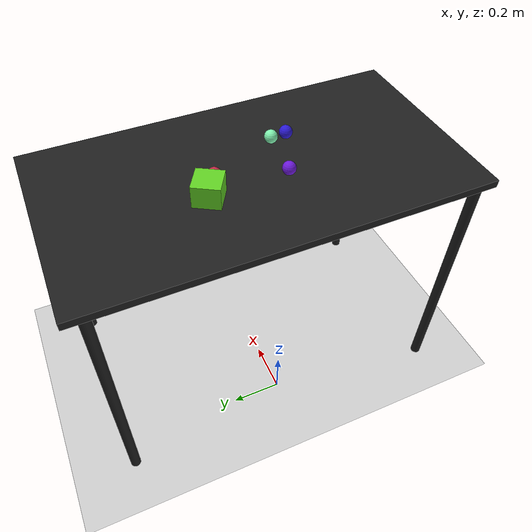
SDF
<?xml version="1.0" ?>
<sdf version="1.6">
  <world name="arm_world">
    <plugin filename="gz-sim-physics-system" name="gz::sim::systems::Physics">
      <engine>
        <filename>libgz-physics-bullet-featherstone-plugin.so</filename>
      </engine>
    </plugin>
    <plugin filename="gz-sim-user-commands-system" name="gz::sim::systems::UserCommands"/>
    <plugin filename="gz-sim-scene-broadcaster-system" name="gz::sim::systems::SceneBroadcaster"/>
    <plugin filename="gz-sim-sensors-system" name="gz::sim::systems::Sensors">
      <render_engine>ogre2</render_engine>
    </plugin>
    <gravity>0.0 0.0 -9.8</gravity>
    <scene>
      <shadows>false</shadows>
    </scene>
    <gui>
      <camera name="user_camera">
        <pose>0.75 -0.75 1.4 0 0.29 2.21</pose>
      </camera>
    </gui>
    <include>
      <uri>https://fuel.gazebosim.org/1.0/OpenRobotics/models/Sun</uri>
    </include>
    <model name="table">
      <static>true</static>
      <include>
        <uri>model://table</uri>
      </include>
      <pose>0.29 0 0 0 0 1.5708</pose>
    </model>
    <model name="ground_plane">
      <static>true</static>
      <link name="link">
        <collision name="collision">
          <geometry>
            <plane>
              <normal>0 0 1</normal>
            </plane>
          </geometry>
          <surface>
            <friction>
              <ode>
                <mu>1.0</mu>
                <mu2>1.0</mu2>
              </ode>
            </friction>
          </surface>
        </collision>
        <visual name="visual">
          <geometry>
            <plane>
              <normal>0 0 1</normal>
              <size>100 100</size>
            </plane>
          </geometry>
          <material>
            <ambient>0.8 0.8 0.8 1</ambient>
            <diffuse>0.8 0.8 0.8 1</diffuse>
            <specular>0.8 0.8 0.8 1</specular>
          </material>
        </visual>
      </link>
    </model>
    <model name="sphere_m_0">
      <pose>0.271 0.142 1.05 0 0 3.26</pose>
      <link name="sphere_m_0_link">
        <inertial>
          <mass>0.05</mass>
          <inertia>
            <ixx>2.04e-7</ixx>
            <iyy>2.04e-7</iyy>
            <izz>3.9e-8</izz>
            <ixy>0</ixy>
            <ixz>0</ixz>
            <iyz>0</iyz>
          </inertia>
        </inertial>
        <collision name="sphere_m_0_collision">
          <geometry>
            <sphere>
              <radius>0.025</radius>
            </sphere>
          </geometry>
          <surface>
            <friction>
              <ode>
                <mu>0.8</mu>
                <mu2>0.8</mu2>
                <fdir1>0 0 1</fdir1>
                <slip1>0.001</slip1>
                <slip2>0.001</slip2>
              </ode>
              <torsional>
                <coefficient>0.1</coefficient>
                <surface_radius>0.015</surface_radius>
                <use_patch_radius>true</use_patch_radius>
              </torsional>
            </friction>
            <contact>
              <ode>
                <kp>1e5</kp>
                <kd>10</kd>
                <max_vel>0.1</max_vel>
                <min_depth>0.001</min_depth>
                <soft_cfm>0.01</soft_cfm>
                <soft_erp>0.2</soft_erp>
              </ode>
            </contact>
            <bounce>
              <restitution_coefficient>0.2</restitution_coefficient>
              <threshold>0.01</threshold>
            </bounce>
          </surface>
        </collision>
        <visual name="sphere_m_0_visual">
          <geometry>
            <sphere>
              <radius>0.025</radius>
            </sphere>
          </geometry>
          <material>
            <ambient>0.76 0.16 0.28 1</ambient>
            <diffuse>0.76 0.16 0.28 1</diffuse>
          </material>
        </visual>
        <velocity_decay>
          <linear>1</linear>
          <angular>1</angular>
        </velocity_decay>
      </link>
    </model>
    <model name="cube_l_1">
      <pose>0.2 0.19 1.05 0 0 2.6</pose>
      <link name="cube_l_1_link">
        <inertial>
          <mass>0.05</mass>
          <inertia>
            <ixx>2.04e-7</ixx>
            <iyy>2.04e-7</iyy>
            <izz>3.9e-8</izz>
            <ixy>0</ixy>
            <ixz>0</ixz>
            <iyz>0</iyz>
          </inertia>
        </inertial>
        <collision name="cube_l_1_collision">
          <geometry>
            <box>
              <size>0.1 0.1 0.1</size>
            </box>
          </geometry>
          <surface>
            <friction>
              <ode>
                <mu>0.8</mu>
                <mu2>0.8</mu2>
                <fdir1>0 0 1</fdir1>
                <slip1>0.001</slip1>
                <slip2>0.001</slip2>
              </ode>
              <torsional>
                <coefficient>0.1</coefficient>
                <surface_radius>0.015</surface_radius>
                <use_patch_radius>true</use_patch_radius>
              </torsional>
            </friction>
            <contact>
              <ode>
                <kp>1e5</kp>
                <kd>10</kd>
                <max_vel>0.1</max_vel>
                <min_depth>0.001</min_depth>
                <soft_cfm>0.01</soft_cfm>
                <soft_erp>0.2</soft_erp>
              </ode>
            </contact>
            <bounce>
              <restitution_coefficient>0.2</restitution_coefficient>
              <threshold>0.01</threshold>
            </bounce>
          </surface>
        </collision>
        <visual name="cube_l_1_visual">
          <geometry>
            <box>
              <size>0.1 0.1 0.1</size>
            </box>
          </geometry>
          <material>
            <ambient>0.38 0.82 0.14 1</ambient>
            <diffuse>0.38 0.82 0.14 1</diffuse>
          </material>
        </visual>
        <velocity_decay>
          <linear>1</linear>
          <angular>1</angular>
        </velocity_decay>
      </link>
    </model>
    <model name="sphere_m_2">
      <pose>0.2 -0.103 1.05 0 0 2.03</pose>
      <link name="sphere_m_2_link">
        <inertial>
          <mass>0.05</mass>
          <inertia>
            <ixx>2.04e-7</ixx>
            <iyy>2.04e-7</iyy>
            <izz>3.9e-8</izz>
            <ixy>0</ixy>
            <ixz>0</ixz>
            <iyz>0</iyz>
          </inertia>
        </inertial>
        <collision name="sphere_m_2_collision">
          <geometry>
            <sphere>
              <radius>0.025</radius>
            </sphere>
          </geometry>
          <surface>
            <friction>
              <ode>
                <mu>0.8</mu>
                <mu2>0.8</mu2>
                <fdir1>0 0 1</fdir1>
                <slip1>0.001</slip1>
                <slip2>0.001</slip2>
              </ode>
              <torsional>
                <coefficient>0.1</coefficient>
                <surface_radius>0.015</surface_radius>
                <use_patch_radius>true</use_patch_radius>
              </torsional>
            </friction>
            <contact>
              <ode>
                <kp>1e5</kp>
                <kd>10</kd>
                <max_vel>0.1</max_vel>
                <min_depth>0.001</min_depth>
                <soft_cfm>0.01</soft_cfm>
                <soft_erp>0.2</soft_erp>
              </ode>
            </contact>
            <bounce>
              <restitution_coefficient>0.2</restitution_coefficient>
              <threshold>0.01</threshold>
            </bounce>
          </surface>
        </collision>
        <visual name="sphere_m_2_visual">
          <geometry>
            <sphere>
              <radius>0.025</radius>
            </sphere>
          </geometry>
          <material>
            <ambient>0.43 0.1 0.86 1</ambient>
            <diffuse>0.43 0.1 0.86 1</diffuse>
          </material>
        </visual>
        <velocity_decay>
          <linear>1</linear>
          <angular>1</angular>
        </velocity_decay>
      </link>
    </model>
    <model name="sphere_m_3">
      <pose>0.392 -0.183 1.05 0 0 2.86</pose>
      <link name="sphere_m_3_link">
        <inertial>
          <mass>0.05</mass>
          <inertia>
            <ixx>2.04e-7</ixx>
            <iyy>2.04e-7</iyy>
            <izz>3.9e-8</izz>
            <ixy>0</ixy>
            <ixz>0</ixz>
            <iyz>0</iyz>
          </inertia>
        </inertial>
        <collision name="sphere_m_3_collision">
          <geometry>
            <sphere>
              <radius>0.025</radius>
            </sphere>
          </geometry>
          <surface>
            <friction>
              <ode>
                <mu>0.8</mu>
                <mu2>0.8</mu2>
                <fdir1>0 0 1</fdir1>
                <slip1>0.001</slip1>
                <slip2>0.001</slip2>
              </ode>
              <torsional>
                <coefficient>0.1</coefficient>
                <surface_radius>0.015</surface_radius>
                <use_patch_radius>true</use_patch_radius>
              </torsional>
            </friction>
            <contact>
              <ode>
                <kp>1e5</kp>
                <kd>10</kd>
                <max_vel>0.1</max_vel>
                <min_depth>0.001</min_depth>
                <soft_cfm>0.01</soft_cfm>
                <soft_erp>0.2</soft_erp>
              </ode>
            </contact>
            <bounce>
              <restitution_coefficient>0.2</restitution_coefficient>
              <threshold>0.01</threshold>
            </bounce>
          </surface>
        </collision>
        <visual name="sphere_m_3_visual">
          <geometry>
            <sphere>
              <radius>0.025</radius>
            </sphere>
          </geometry>
          <material>
            <ambient>0.17 0.1 0.84 1</ambient>
            <diffuse>0.17 0.1 0.84 1</diffuse>
          </material>
        </visual>
        <velocity_decay>
          <linear>1</linear>
          <angular>1</angular>
        </velocity_decay>
      </link>
    </model>
    <model name="sphere_m_4">
      <pose>0.388 -0.122 1.05 0 0 0.88</pose>
      <link name="sphere_m_4_link">
        <inertial>
          <mass>0.05</mass>
          <inertia>
            <ixx>2.04e-7</ixx>
            <iyy>2.04e-7</iyy>
            <izz>3.9e-8</izz>
            <ixy>0</ixy>
            <ixz>0</ixz>
            <iyz>0</iyz>
          </inertia>
        </inertial>
        <collision name="sphere_m_4_collision">
          <geometry>
            <sphere>
              <radius>0.025</radius>
            </sphere>
          </geometry>
          <surface>
            <friction>
              <ode>
                <mu>0.8</mu>
                <mu2>0.8</mu2>
                <fdir1>0 0 1</fdir1>
                <slip1>0.001</slip1>
                <slip2>0.001</slip2>
              </ode>
              <torsional>
                <coefficient>0.1</coefficient>
                <surface_radius>0.015</surface_radius>
                <use_patch_radius>true</use_patch_radius>
              </torsional>
            </friction>
            <contact>
              <ode>
                <kp>1e5</kp>
                <kd>10</kd>
                <max_vel>0.1</max_vel>
                <min_depth>0.001</min_depth>
                <soft_cfm>0.01</soft_cfm>
                <soft_erp>0.2</soft_erp>
              </ode>
            </contact>
            <bounce>
              <restitution_coefficient>0.2</restitution_coefficient>
              <threshold>0.01</threshold>
            </bounce>
          </surface>
        </collision>
        <visual name="sphere_m_4_visual">
          <geometry>
            <sphere>
              <radius>0.025</radius>
            </sphere>
          </geometry>
          <material>
            <ambient>0.5 0.95 0.69 1</ambient>
            <diffuse>0.5 0.95 0.69 1</diffuse>
          </material>
        </visual>
        <velocity_decay>
          <linear>1</linear>
          <angular>1</angular>
        </velocity_decay>
      </link>
    </model>
  </world>
</sdf>

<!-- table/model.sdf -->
<sdf version="1.5">
  <model name="table">
    <static>true</static>
    <link name="link">
      <collision name="surface">
        <pose>0 0 1.0 0 0 0</pose>
        <geometry>
          <box>
            <size>1.5 0.8 0.03</size>
          </box>
        </geometry>
        <surface>
          <friction>
            <ode>
              <mu>0.6</mu>
              <mu2>0.6</mu2>
            </ode>
          </friction>
        </surface>
      </collision>
      <visual name="surface">
        <pose>0 0 1.0 0 0 0</pose>
        <geometry>
          <box>
            <size>1.5 0.8 0.03</size>
          </box>
        </geometry>
        <material>
          <script>
            <uri>file://media/materials/scripts/gazebo.material</uri>
            <name>Gazebo/Black</name>
          </script>
        </material>
      </visual>
      <collision name="front_left_leg">
        <pose>0.68 0.38 0.5 0 0 0</pose>
        <geometry>
          <cylinder>
            <radius>0.02</radius>
            <length>1.0</length>
          </cylinder>
        </geometry>
      </collision>
      <visual name="front_left_leg">
        <pose>0.68 0.38 0.5 0 0 0</pose>
        <geometry>
          <cylinder>
            <radius>0.02</radius>
            <length>1.0</length>
          </cylinder>
        </geometry>
        <material>
          <script>
            <uri>file://media/materials/scripts/gazebo.material</uri>
            <name>Gazebo/Black</name>
          </script>
        </material>
      </visual>
      <collision name="front_right_leg">
        <pose>0.68 -0.38 0.5 0 0 0</pose>
        <geometry>
          <cylinder>
            <radius>0.02</radius>
            <length>1.0</length>
          </cylinder>
        </geometry>
      </collision>
      <visual name="front_right_leg">
        <pose>0.68 -0.38 0.5 0 0 0</pose>
        <geometry>
          <cylinder>
            <radius>0.02</radius>
            <length>1.0</length>
          </cylinder>
        </geometry>
        <material>
          <script>
            <uri>file://media/materials/scripts/gazebo.material</uri>
            <name>Gazebo/Black</name>
          </script>
        </material>
      </visual>
      <collision name="back_right_leg">
        <pose>-0.68 -0.38 0.5 0 0 0</pose>
        <geometry>
          <cylinder>
            <radius>0.02</radius>
            <length>1.0</length>
          </cylinder>
        </geometry>
      </collision>
      <visual name="back_right_leg">
        <pose>-0.68 -0.38 0.5 0 0 0</pose>
        <geometry>
          <cylinder>
            <radius>0.02</radius>
            <length>1.0</length>
          </cylinder>
        </geometry>
        <material>
          <script>
            <uri>file://media/materials/scripts/gazebo.material</uri>
            <name>Gazebo/Black</name>
          </script>
        </material>
      </visual>
      <collision name="back_left_leg">
        <pose>-0.68 0.38 0.5 0 0 0</pose>
        <geometry>
          <cylinder>
            <radius>0.02</radius>
            <length>1.0</length>
          </cylinder>
        </geometry>
      </collision>
      <visual name="back_left_leg">
        <pose>-0.68 0.38 0.5 0 0 0</pose>
        <geometry>
          <cylinder>
            <radius>0.02</radius>
            <length>1.0</length>
          </cylinder>
        </geometry>
        <material>
          <script>
            <uri>file://media/materials/scripts/gazebo.material</uri>
            <name>Gazebo/Black</name>
          </script>
        </material>
      </visual>
    </link>
  </model>
</sdf>
